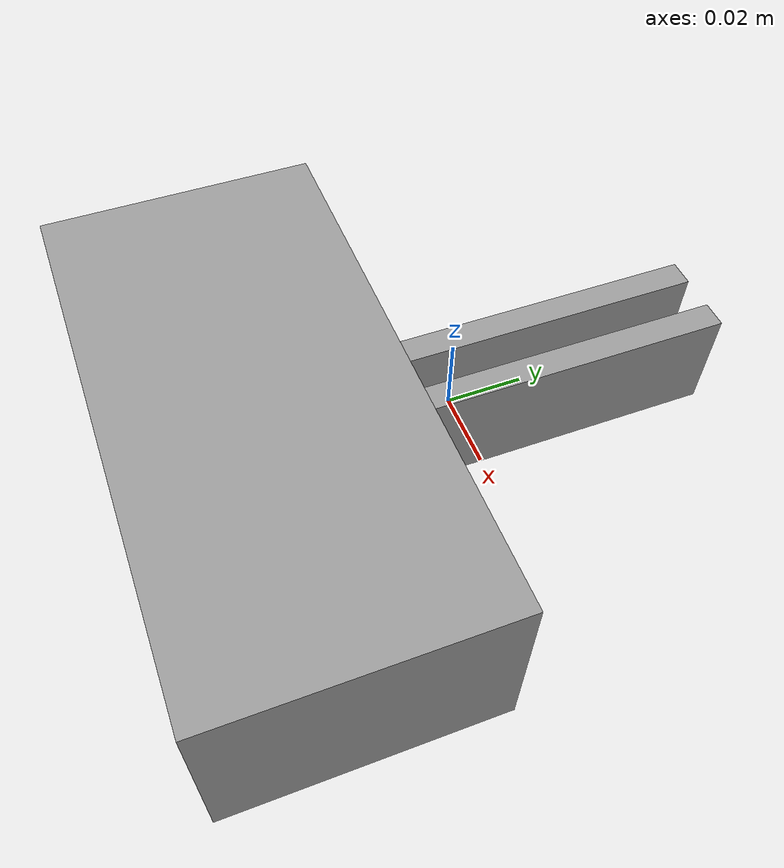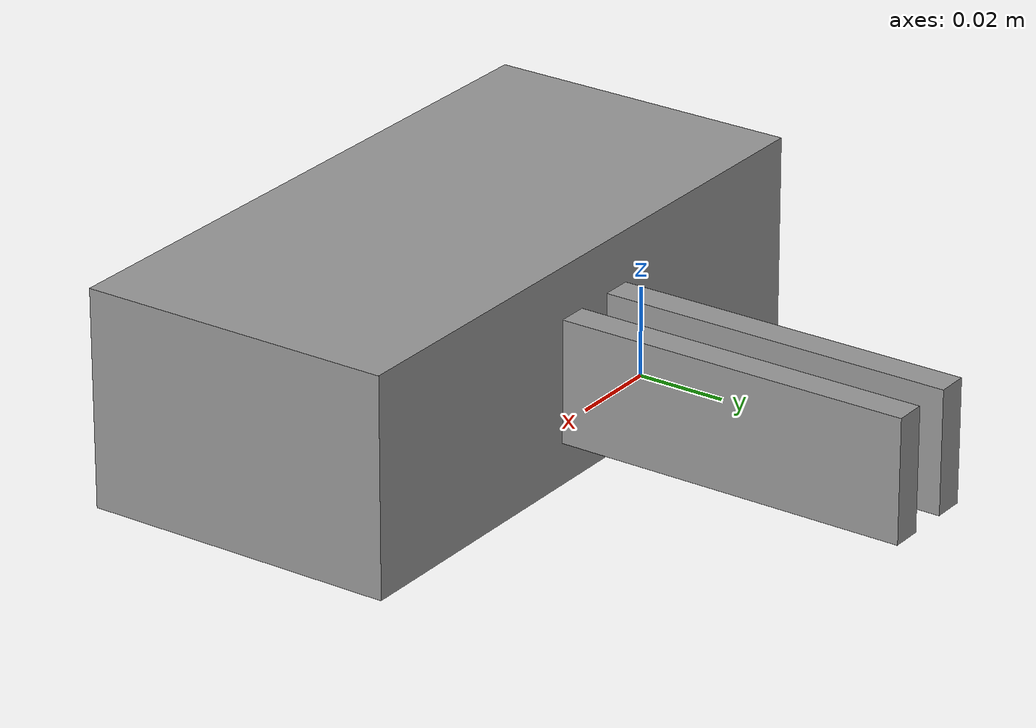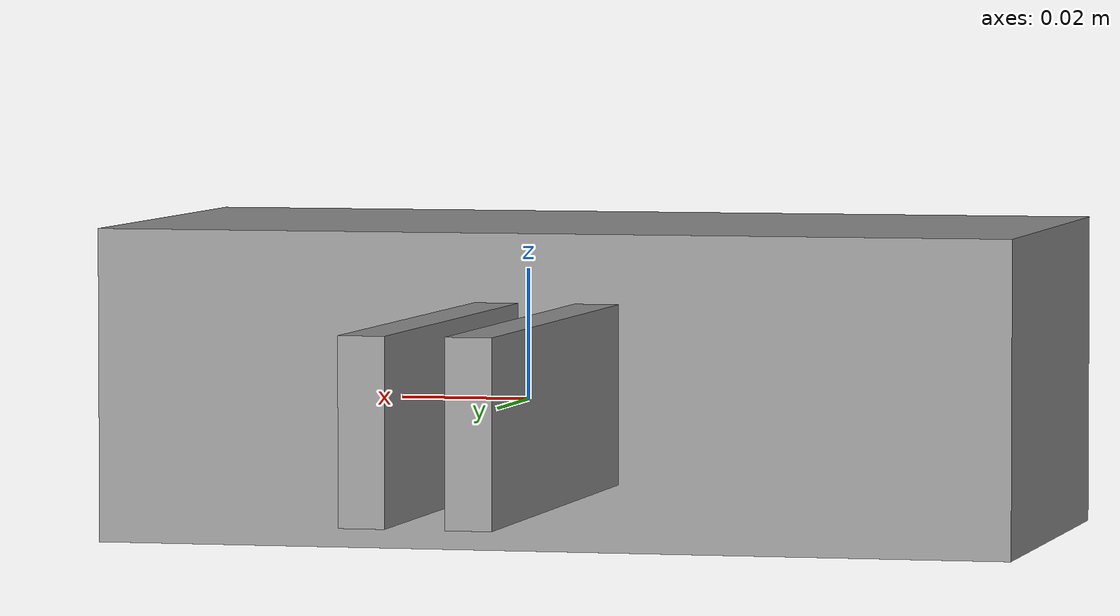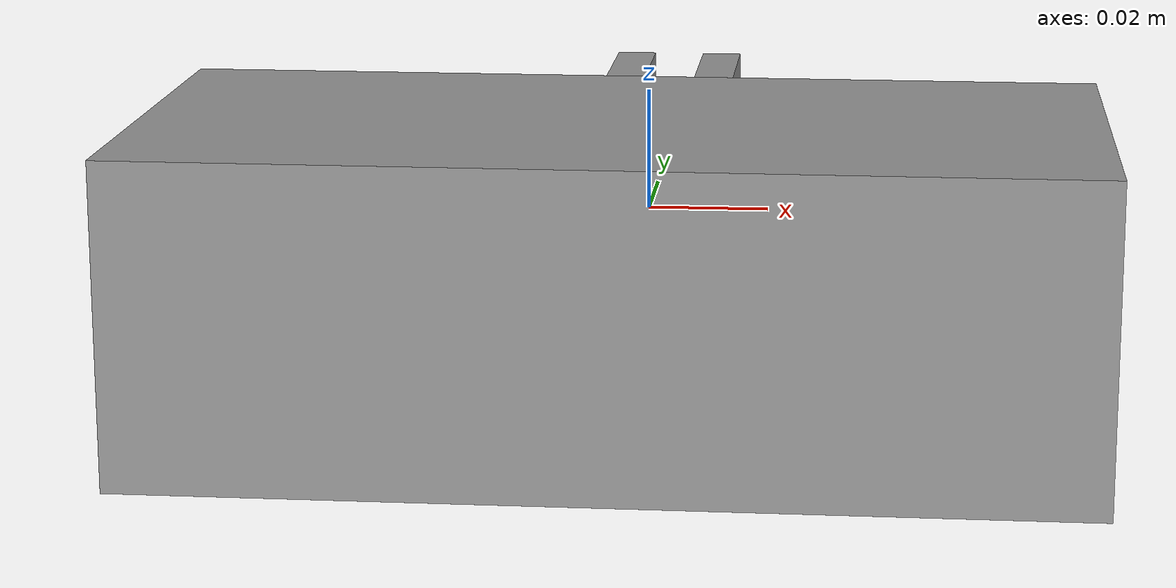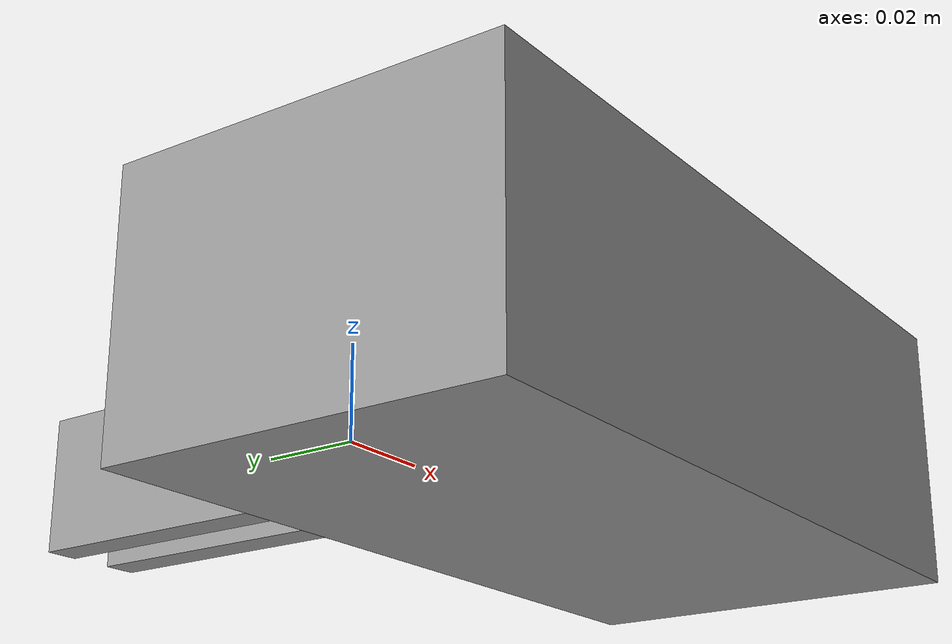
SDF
<?xml version='1.0'?>

<sdf version='1.6'>
  <model name='Schunk_Gripper'>
    <link name='body'>
      <pose frame=''>0 -0.049133 0 0 -0 0</pose>
      <inertial>
        <mass>0.988882</mass>
        <inertia>
          <ixx>0.162992</ixx>
          <ixy>0</ixy>
          <ixz>0</ixz>
          <iyy>0.162992</iyy>
          <iyz>0</iyz>
          <izz>0.164814</izz>
        </inertia>
        <pose frame=''>0 0 0 0 -0 0</pose>
      </inertial>
      <self_collide>0</self_collide>
      <kinematic>0</kinematic>
      <visual name='visual'>
        <pose frame=''>0 0 0 0 -0 0</pose>
        <geometry>
          <box>
            <size>0.146 0.0725 0.049521</size>
          </box>
        </geometry>
        <material>
          <lighting>1</lighting>
          <script>
            <uri>file://media/materials/scripts/gazebo.material</uri>
            <name>Gazebo/Grey</name>
          </script>
          <ambient>0.3 0.3 0.3 1</ambient>
          <diffuse>0.7 0.7 0.7 1</diffuse>
          <specular>0.01 0.01 0.01 1</specular>
          <emissive>0 0 0 1</emissive>
          <shader type='vertex'>
            <normal_map>__default__</normal_map>
          </shader>
        </material>
        <cast_shadows>1</cast_shadows>
        <transparency>0</transparency>
      </visual>
    </link>
    <frame name='body_frame'>
      <link>body</link>
      <pose frame=''>0 0 0 0 0 0</pose>
    </frame>
    <link name='left_finger'>
      <pose frame=''>-0.008 0.029 0 0 -0 0</pose>
      <inertial>
        <mass>0.05</mass>
        <inertia>
          <ixx>0.16</ixx>
          <ixy>0</ixy>
          <ixz>0</ixz>
          <iyy>0.16</iyy>
          <iyz>0</iyz>
          <izz>0.16</izz>
        </inertia>
        <pose frame=''>0 0 0 0 -0 0</pose>
      </inertial>
      <self_collide>0</self_collide>
      <kinematic>0</kinematic>

      <visual name='visual'>
        <pose frame=''>0 0 0 0 -0 0</pose>
        <geometry>
          <box>
            <size>0.007 0.081 0.028</size>
          </box>
        </geometry>
        <material>
          <lighting>1</lighting>
          <script>
            <uri>file://media/materials/scripts/gazebo.material</uri>
            <name>Gazebo/Grey</name>
          </script>
          <ambient>0.3 0.3 0.3 1</ambient>
          <diffuse>0.7 0.7 0.7 1</diffuse>
          <specular>0.01 0.01 0.01 1</specular>
          <emissive>0 0 0 1</emissive>
          <shader type='vertex'>
            <normal_map>__default__</normal_map>
          </shader>
        </material>
        <cast_shadows>1</cast_shadows>
        <transparency>0</transparency>
      </visual>

      <!--&lt;!&ndash; the rubber pads &ndash;&gt;-->
      <!--&lt;!&ndash; Four small spheres represent a rubber pad. &ndash;&gt;-->
      <!--&lt;!&ndash; pose for the pad x: along gripper body, y: along the finger, z: perp to gripper body &ndash;&gt;-->

      <!--&lt;!&ndash; A visual element to represent the circular pad&ndash;&gt;-->

    </link>
    <link name='left_pusher'>
      <pose frame=''>0.028 0.037 0 0 0 -0.909</pose>
      <inertial>
        <mass>0</mass>
        <inertia>
          <ixx>0.0001</ixx>
          <ixy>0</ixy>
          <ixz>0</ixz>
          <iyy>0.0001</iyy>
          <iyz>0</iyz>
          <izz>0.0001</izz>
        </inertia>
        <pose frame=''>0 0 0 0 -0 0</pose>
      </inertial>
      <self_collide>0</self_collide>
      <kinematic>0</kinematic>
      <gravity>1</gravity>
    </link>
    <link name='nonphysical_rotor'>
      <pose frame=''>0 0 0 0 -0 0.785398</pose>
      <inertial>
        <mass>0</mass>
        <inertia>
          <ixx>0.0001</ixx>
          <ixy>0</ixy>
          <ixz>0</ixz>
          <iyy>0.0001</iyy>
          <iyz>0</iyz>
          <izz>0.0001</izz>
        </inertia>
        <pose frame=''>0 0 0 0 -0 0</pose>
      </inertial>
      <self_collide>0</self_collide>
      <kinematic>0</kinematic>
      <gravity>1</gravity>
    </link>
    <link name='right_finger'>
      <pose frame=''>0.008 0.029 0 0 -0 0</pose>
      <inertial>
        <mass>0.05</mass>
        <inertia>
          <ixx>0.16</ixx>
          <ixy>0</ixy>
          <ixz>0</ixz>
          <iyy>0.16</iyy>
          <iyz>0</iyz>
          <izz>0.16</izz>
        </inertia>
        <pose frame=''>0 0 0 0 -0 0</pose>
      </inertial>
      <self_collide>0</self_collide>
      <kinematic>0</kinematic>

      <visual name='visual'>
        <pose frame=''>0 0 0 0 -0 0</pose>
        <geometry>
          <box>
            <size>0.007 0.081 0.028</size>
          </box>
        </geometry>
        <material>
          <lighting>1</lighting>
          <script>
            <uri>file://media/materials/scripts/gazebo.material</uri>
            <name>Gazebo/Grey</name>
          </script>
          <ambient>0.3 0.3 0.3 1</ambient>
          <diffuse>0.7 0.7 0.7 1</diffuse>
          <specular>0.01 0.01 0.01 1</specular>
          <emissive>0 0 0 1</emissive>
          <shader type='vertex'>
            <normal_map>__default__</normal_map>
          </shader>
        </material>
        <cast_shadows>1</cast_shadows>
        <transparency>0</transparency>
      </visual>

      <!--&lt;!&ndash; the rubber pads &ndash;&gt;-->
      <!--&lt;!&ndash; Four small spheres represent a rubber pad. &ndash;&gt;-->
      <!--&lt;!&ndash; pose for the pad x: along gripper body, y: along the finger, z: perp to gripper body &ndash;&gt;-->

      <!--&lt;!&ndash; A visual element to represent the circular pad&ndash;&gt;-->

    </link>
    <link name='right_pusher'>
      <pose frame=''>-0.028 -0.037 0 0 0 -0.909</pose>
      <inertial>
        <mass>0</mass>
        <inertia>
          <ixx>0.0001</ixx>
          <ixy>0</ixy>
          <ixz>0</ixz>
          <iyy>0.0001</iyy>
          <iyz>0</iyz>
          <izz>0.0001</izz>
        </inertia>
        <pose frame=''>0 0 0 0 -0 0</pose>
      </inertial>
      <self_collide>0</self_collide>
      <kinematic>0</kinematic>
      <gravity>1</gravity>
    </link>

    <!-- Collision filter groups-->
    <collision_filter_group name="finger_filter">
      <member link="left_finger"/>
      <member link="right_finger"/>
      <ignored_collision_filter_group collision_filter_group="finger_filter"/>
    </collision_filter_group>

    <joint name='left_finger_push' type='revolute'>
      <parent>left_finger</parent>
      <child>left_pusher</child>
      <pose frame=''>0 -0.057 0 0 -0 0</pose>
      <axis>
        <limit><effort>0</effort></limit>
        <xyz>0 0 1</xyz>
        <use_parent_model_frame>0</use_parent_model_frame>
        <dynamics>
          <spring_reference>0</spring_reference>
          <spring_stiffness>0</spring_stiffness>
          <damping>0</damping>
          <friction>0</friction>
        </dynamics>
      </axis>
      <physics>
        <ode>
          <limit>
            <cfm>0</cfm>
            <erp>0.2</erp>
          </limit>
          <suspension>
            <cfm>0</cfm>
            <erp>0.2</erp>
          </suspension>
        </ode>
      </physics>
    </joint>
    <joint name='left_finger_sliding_joint' type='prismatic'>
      <parent>body</parent>
      <child>left_finger</child>
      <pose frame=''>0 0 0 0 -0 0</pose>
      <axis>
        <xyz>1 0 0</xyz>
        <use_parent_model_frame>0</use_parent_model_frame>
        <!-- Drake attaches an actuator to all and only joints with a nonzero
             effort limit. -->
        <limit>
          <lower>-0.055</lower>
          <upper>0</upper>
          <effort>80</effort>
          <stiffness>15000</stiffness>
          <dissipation>50</dissipation>
        </limit>
        <dynamics>
          <spring_reference>0</spring_reference>
          <spring_stiffness>0</spring_stiffness>
          <damping>0</damping>
          <friction>0</friction>
        </dynamics>
      </axis>
      <physics>
        <ode>
          <limit>
            <cfm>0</cfm>
            <erp>0.2</erp>
          </limit>
          <suspension>
            <cfm>0</cfm>
            <erp>0.2</erp>
          </suspension>
        </ode>
      </physics>
    </joint>
    <joint name='left_rotor_push' type='revolute'>
      <parent>nonphysical_rotor</parent>
      <child>left_pusher</child>
      <pose frame=''>0 0.057 0 0 -0 0</pose>
      <axis>
        <limit><effort>0</effort></limit>
        <xyz>0 0 1</xyz>
        <use_parent_model_frame>0</use_parent_model_frame>
        <dynamics>
          <spring_reference>0</spring_reference>
          <spring_stiffness>0</spring_stiffness>
          <damping>0</damping>
          <friction>0</friction>
        </dynamics>
      </axis>
      <physics>
        <ode>
          <limit>
            <cfm>0</cfm>
            <erp>0.2</erp>
          </limit>
          <suspension>
            <cfm>0</cfm>
            <erp>0.2</erp>
          </suspension>
        </ode>
      </physics>
    </joint>
    <joint name='nonphysical_rotor_mount' type='revolute'>
      <parent>body</parent>
      <child>nonphysical_rotor</child>
      <pose frame=''>0 0 0 0 -0 0</pose>
      <axis>
        <limit><effort>0</effort></limit>
        <xyz>0 0 1</xyz>
        <use_parent_model_frame>0</use_parent_model_frame>
        <dynamics>
          <spring_reference>0</spring_reference>
          <spring_stiffness>0</spring_stiffness>
          <damping>0</damping>
          <friction>0</friction>
        </dynamics>
      </axis>
      <physics>
        <ode>
          <limit>
            <cfm>0</cfm>
            <erp>0.2</erp>
          </limit>
          <suspension>
            <cfm>0</cfm>
            <erp>0.2</erp>
          </suspension>
        </ode>
      </physics>
    </joint>
    <joint name='right_finger_push' type='revolute'>
      <parent>right_finger</parent>
      <child>right_pusher</child>
      <pose frame=''>0 0.057 0 0 -0 0</pose>
      <axis>
        <limit><effort>0</effort></limit>
        <xyz>0 0 1</xyz>
        <use_parent_model_frame>0</use_parent_model_frame>
        <dynamics>
          <spring_reference>0</spring_reference>
          <spring_stiffness>0</spring_stiffness>
          <damping>0</damping>
          <friction>0</friction>
        </dynamics>
      </axis>
      <physics>
        <ode>
          <limit>
            <cfm>0</cfm>
            <erp>0.2</erp>
          </limit>
          <suspension>
            <cfm>0</cfm>
            <erp>0.2</erp>
          </suspension>
        </ode>
      </physics>
    </joint>
    <joint name='right_finger_sliding_joint' type='prismatic'>
      <parent>body</parent>
      <child>right_finger</child>
      <pose frame=''>0 0 0 0 -0 0</pose>
      <axis>
        <xyz>1 0 0</xyz>
        <use_parent_model_frame>0</use_parent_model_frame>
        <limit>
          <effort>0</effort>
        </limit>
        <dynamics>
          <spring_reference>0</spring_reference>
          <spring_stiffness>0</spring_stiffness>
          <damping>0</damping>
          <friction>0</friction>
        </dynamics>
      </axis>
      <physics>
        <ode>
          <limit>
            <cfm>0</cfm>
            <erp>0.2</erp>
          </limit>
          <suspension>
            <cfm>0</cfm>
            <erp>0.2</erp>
          </suspension>
        </ode>
      </physics>
    </joint>
    <joint name='right_rotor_push' type='revolute'>
      <parent>nonphysical_rotor</parent>
      <child>right_pusher</child>
      <pose frame=''>0 -0.057 0 0 -0 0</pose>
      <axis>
        <limit><effort>0</effort></limit>
        <xyz>0 0 1</xyz>
        <use_parent_model_frame>0</use_parent_model_frame>
        <dynamics>
          <spring_reference>0</spring_reference>
          <spring_stiffness>0</spring_stiffness>
          <damping>0</damping>
          <friction>0</friction>
        </dynamics>
      </axis>
      <physics>
        <ode>
          <limit>
            <cfm>0</cfm>
            <erp>0.2</erp>
          </limit>
          <suspension>
            <cfm>0</cfm>
            <erp>0.2</erp>
          </suspension>
        </ode>
      </physics>
    </joint>
    <static>0</static>
    <allow_auto_disable>1</allow_auto_disable>
  </model>
</sdf>
